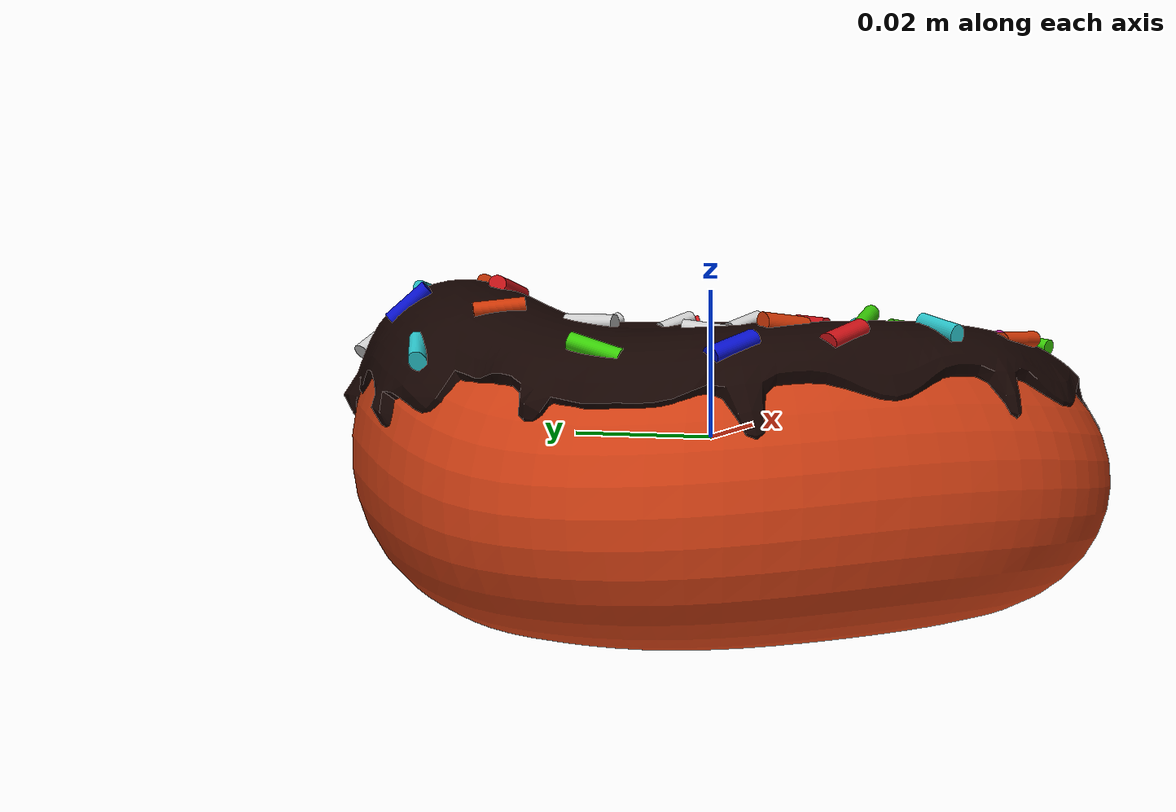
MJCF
<mujoco model="donut_11">
  <asset>
    <mesh file="visual/model_normalized_0.obj" name="model_normalized_0_vis" scale="0.10499999999999997 0.10499999999999997 0.10499999999999997" refquat="1.0 0.0 0.0 0.0"/>
    <mesh file="visual/model_normalized_1.obj" name="model_normalized_1_vis" scale="0.10499999999999997 0.10499999999999997 0.10499999999999997" refquat="1.0 0.0 0.0 0.0"/>
    <mesh file="visual/model_normalized_2.obj" name="model_normalized_2_vis" scale="0.10499999999999997 0.10499999999999997 0.10499999999999997" refquat="1.0 0.0 0.0 0.0"/>
    <mesh file="visual/model_normalized_3.obj" name="model_normalized_3_vis" scale="0.10499999999999997 0.10499999999999997 0.10499999999999997" refquat="1.0 0.0 0.0 0.0"/>
    <mesh file="visual/model_normalized_4.obj" name="model_normalized_4_vis" scale="0.10499999999999997 0.10499999999999997 0.10499999999999997" refquat="1.0 0.0 0.0 0.0"/>
    <mesh file="visual/model_normalized_5.obj" name="model_normalized_5_vis" scale="0.10499999999999997 0.10499999999999997 0.10499999999999997" refquat="1.0 0.0 0.0 0.0"/>
    <mesh file="visual/model_normalized_6.obj" name="model_normalized_6_vis" scale="0.10499999999999997 0.10499999999999997 0.10499999999999997" refquat="1.0 0.0 0.0 0.0"/>
    <mesh file="visual/model_normalized_7.obj" name="model_normalized_7_vis" scale="0.10499999999999997 0.10499999999999997 0.10499999999999997" refquat="1.0 0.0 0.0 0.0"/>
    <mesh file="visual/model_normalized_8.obj" name="model_normalized_8_vis" scale="0.10499999999999997 0.10499999999999997 0.10499999999999997" refquat="1.0 0.0 0.0 0.0"/>
    <mesh file="visual/model_normalized_9.obj" name="model_normalized_9_vis" scale="0.10499999999999997 0.10499999999999997 0.10499999999999997" refquat="1.0 0.0 0.0 0.0"/>
    <mesh file="collision/model_normalized_collision_22.obj" name="model_normalized_collision_22._coll" scale="0.10499999999999997 0.10499999999999997 0.10499999999999997" refquat="1.0 0.0 0.0 0.0"/>
    <mesh file="collision/model_normalized_collision_23.obj" name="model_normalized_collision_23._coll" scale="0.10499999999999997 0.10499999999999997 0.10499999999999997" refquat="1.0 0.0 0.0 0.0"/>
    <mesh file="collision/model_normalized_collision_21.obj" name="model_normalized_collision_21._coll" scale="0.10499999999999997 0.10499999999999997 0.10499999999999997" refquat="1.0 0.0 0.0 0.0"/>
    <mesh file="collision/model_normalized_collision_20.obj" name="model_normalized_collision_20._coll" scale="0.10499999999999997 0.10499999999999997 0.10499999999999997" refquat="1.0 0.0 0.0 0.0"/>
    <mesh file="collision/model_normalized_collision_24.obj" name="model_normalized_collision_24._coll" scale="0.10499999999999997 0.10499999999999997 0.10499999999999997" refquat="1.0 0.0 0.0 0.0"/>
    <mesh file="collision/model_normalized_collision_30.obj" name="model_normalized_collision_30._coll" scale="0.10499999999999997 0.10499999999999997 0.10499999999999997" refquat="1.0 0.0 0.0 0.0"/>
    <mesh file="collision/model_normalized_collision_18.obj" name="model_normalized_collision_18._coll" scale="0.10499999999999997 0.10499999999999997 0.10499999999999997" refquat="1.0 0.0 0.0 0.0"/>
    <mesh file="collision/model_normalized_collision_19.obj" name="model_normalized_collision_19._coll" scale="0.10499999999999997 0.10499999999999997 0.10499999999999997" refquat="1.0 0.0 0.0 0.0"/>
    <mesh file="collision/model_normalized_collision_31.obj" name="model_normalized_collision_31._coll" scale="0.10499999999999997 0.10499999999999997 0.10499999999999997" refquat="1.0 0.0 0.0 0.0"/>
    <mesh file="collision/model_normalized_collision_25.obj" name="model_normalized_collision_25._coll" scale="0.10499999999999997 0.10499999999999997 0.10499999999999997" refquat="1.0 0.0 0.0 0.0"/>
    <mesh file="collision/model_normalized_collision_27.obj" name="model_normalized_collision_27._coll" scale="0.10499999999999997 0.10499999999999997 0.10499999999999997" refquat="1.0 0.0 0.0 0.0"/>
    <mesh file="collision/model_normalized_collision_26.obj" name="model_normalized_collision_26._coll" scale="0.10499999999999997 0.10499999999999997 0.10499999999999997" refquat="1.0 0.0 0.0 0.0"/>
    <mesh file="collision/model_normalized_collision_9.obj" name="model_normalized_collision_9._coll" scale="0.10499999999999997 0.10499999999999997 0.10499999999999997" refquat="1.0 0.0 0.0 0.0"/>
    <mesh file="collision/model_normalized_collision_8.obj" name="model_normalized_collision_8._coll" scale="0.10499999999999997 0.10499999999999997 0.10499999999999997" refquat="1.0 0.0 0.0 0.0"/>
    <mesh file="collision/model_normalized_collision_6.obj" name="model_normalized_collision_6._coll" scale="0.10499999999999997 0.10499999999999997 0.10499999999999997" refquat="1.0 0.0 0.0 0.0"/>
    <mesh file="collision/model_normalized_collision_7.obj" name="model_normalized_collision_7._coll" scale="0.10499999999999997 0.10499999999999997 0.10499999999999997" refquat="1.0 0.0 0.0 0.0"/>
    <mesh file="collision/model_normalized_collision_5.obj" name="model_normalized_collision_5._coll" scale="0.10499999999999997 0.10499999999999997 0.10499999999999997" refquat="1.0 0.0 0.0 0.0"/>
    <mesh file="collision/model_normalized_collision_4.obj" name="model_normalized_collision_4._coll" scale="0.10499999999999997 0.10499999999999997 0.10499999999999997" refquat="1.0 0.0 0.0 0.0"/>
    <mesh file="collision/model_normalized_collision_0.obj" name="model_normalized_collision_0._coll" scale="0.10499999999999997 0.10499999999999997 0.10499999999999997" refquat="1.0 0.0 0.0 0.0"/>
    <mesh file="collision/model_normalized_collision_1.obj" name="model_normalized_collision_1._coll" scale="0.10499999999999997 0.10499999999999997 0.10499999999999997" refquat="1.0 0.0 0.0 0.0"/>
    <mesh file="collision/model_normalized_collision_3.obj" name="model_normalized_collision_3._coll" scale="0.10499999999999997 0.10499999999999997 0.10499999999999997" refquat="1.0 0.0 0.0 0.0"/>
    <mesh file="collision/model_normalized_collision_2.obj" name="model_normalized_collision_2._coll" scale="0.10499999999999997 0.10499999999999997 0.10499999999999997" refquat="1.0 0.0 0.0 0.0"/>
    <mesh file="collision/model_normalized_collision_17.obj" name="model_normalized_collision_17._coll" scale="0.10499999999999997 0.10499999999999997 0.10499999999999997" refquat="1.0 0.0 0.0 0.0"/>
    <mesh file="collision/model_normalized_collision_16.obj" name="model_normalized_collision_16._coll" scale="0.10499999999999997 0.10499999999999997 0.10499999999999997" refquat="1.0 0.0 0.0 0.0"/>
    <mesh file="collision/model_normalized_collision_28.obj" name="model_normalized_collision_28._coll" scale="0.10499999999999997 0.10499999999999997 0.10499999999999997" refquat="1.0 0.0 0.0 0.0"/>
    <mesh file="collision/model_normalized_collision_14.obj" name="model_normalized_collision_14._coll" scale="0.10499999999999997 0.10499999999999997 0.10499999999999997" refquat="1.0 0.0 0.0 0.0"/>
    <mesh file="collision/model_normalized_collision_15.obj" name="model_normalized_collision_15._coll" scale="0.10499999999999997 0.10499999999999997 0.10499999999999997" refquat="1.0 0.0 0.0 0.0"/>
    <mesh file="collision/model_normalized_collision_29.obj" name="model_normalized_collision_29._coll" scale="0.10499999999999997 0.10499999999999997 0.10499999999999997" refquat="1.0 0.0 0.0 0.0"/>
    <mesh file="collision/model_normalized_collision_11.obj" name="model_normalized_collision_11._coll" scale="0.10499999999999997 0.10499999999999997 0.10499999999999997" refquat="1.0 0.0 0.0 0.0"/>
    <mesh file="collision/model_normalized_collision_10.obj" name="model_normalized_collision_10._coll" scale="0.10499999999999997 0.10499999999999997 0.10499999999999997" refquat="1.0 0.0 0.0 0.0"/>
    <mesh file="collision/model_normalized_collision_12.obj" name="model_normalized_collision_12._coll" scale="0.10499999999999997 0.10499999999999997 0.10499999999999997" refquat="1.0 0.0 0.0 0.0"/>
    <mesh file="collision/model_normalized_collision_13.obj" name="model_normalized_collision_13._coll" scale="0.10499999999999997 0.10499999999999997 0.10499999999999997" refquat="1.0 0.0 0.0 0.0"/>
    <material name="Material.030" specular="0.5" shininess="0.25" rgba="0.076580 0.010038 0.000000 1.0"/>
    <material name="Material.031" specular="0.5" shininess="0.25" rgba="0.800000 0.073747 0.092156 1.0"/>
    <material name="Material.032" specular="0.5" shininess="0.25" rgba="0.800000 0.800000 0.800000 1.0"/>
    <material name="Material.033" specular="0.5" shininess="0.25" rgba="0.800000 0.213830 0.026317 1.0"/>
    <material name="Material.034" specular="0.5" shininess="0.25" rgba="0.222194 0.800000 0.027312 1.0"/>
    <material name="Material.035" specular="0.5" shininess="0.25" rgba="0.800000 0.120380 0.660224 1.0"/>
    <material name="Material.036" specular="0.5" shininess="0.25" rgba="0.168194 0.777143 0.800000 1.0"/>
    <material name="Material.037" specular="0.5" shininess="0.25" rgba="0.800000 0.800000 0.800000 1.0"/>
    <material name="Material.038" specular="0.5" shininess="0.25" rgba="0.035599 0.069545 0.800000 1.0"/>
    <material name="material.004" specular="0.5" shininess="0.25" rgba="0.800000 0.242728 0.075687 1.0"/>
  </asset>
  <worldbody>
    <body>
      <body name="object">
        <geom solimp="0.998 0.998 0.001" solref="0.001 1" density="100" friction="0.95 0.3 0.1" type="mesh" mesh="model_normalized_0_vis" conaffinity="0" contype="0" group="1" material="Material.038"/>
        <geom solimp="0.998 0.998 0.001" solref="0.001 1" density="100" friction="0.95 0.3 0.1" type="mesh" mesh="model_normalized_1_vis" conaffinity="0" contype="0" group="1" material="Material.037"/>
        <geom solimp="0.998 0.998 0.001" solref="0.001 1" density="100" friction="0.95 0.3 0.1" type="mesh" mesh="model_normalized_2_vis" conaffinity="0" contype="0" group="1" material="Material.036"/>
        <geom solimp="0.998 0.998 0.001" solref="0.001 1" density="100" friction="0.95 0.3 0.1" type="mesh" mesh="model_normalized_3_vis" conaffinity="0" contype="0" group="1" material="Material.035"/>
        <geom solimp="0.998 0.998 0.001" solref="0.001 1" density="100" friction="0.95 0.3 0.1" type="mesh" mesh="model_normalized_4_vis" conaffinity="0" contype="0" group="1" material="Material.034"/>
        <geom solimp="0.998 0.998 0.001" solref="0.001 1" density="100" friction="0.95 0.3 0.1" type="mesh" mesh="model_normalized_5_vis" conaffinity="0" contype="0" group="1" material="Material.033"/>
        <geom solimp="0.998 0.998 0.001" solref="0.001 1" density="100" friction="0.95 0.3 0.1" type="mesh" mesh="model_normalized_6_vis" conaffinity="0" contype="0" group="1" material="Material.032"/>
        <geom solimp="0.998 0.998 0.001" solref="0.001 1" density="100" friction="0.95 0.3 0.1" type="mesh" mesh="model_normalized_7_vis" conaffinity="0" contype="0" group="1" material="Material.031"/>
        <geom solimp="0.998 0.998 0.001" solref="0.001 1" density="100" friction="0.95 0.3 0.1" type="mesh" mesh="model_normalized_8_vis" conaffinity="0" contype="0" group="1" material="Material.030"/>
        <geom solimp="0.998 0.998 0.001" solref="0.001 1" density="100" friction="0.95 0.3 0.1" type="mesh" mesh="model_normalized_9_vis" conaffinity="0" contype="0" group="1" material="material.004"/>
        <geom solimp="0.998 0.998 0.001" solref="0.001 1" density="100" friction="0.95 0.3 0.1" type="mesh" mesh="model_normalized_collision_22._coll" group="0" rgba="0.8 0.8 0.8 0.0"/>
        <geom solimp="0.998 0.998 0.001" solref="0.001 1" density="100" friction="0.95 0.3 0.1" type="mesh" mesh="model_normalized_collision_23._coll" group="0" rgba="0.8 0.8 0.8 0.0"/>
        <geom solimp="0.998 0.998 0.001" solref="0.001 1" density="100" friction="0.95 0.3 0.1" type="mesh" mesh="model_normalized_collision_21._coll" group="0" rgba="0.8 0.8 0.8 0.0"/>
        <geom solimp="0.998 0.998 0.001" solref="0.001 1" density="100" friction="0.95 0.3 0.1" type="mesh" mesh="model_normalized_collision_20._coll" group="0" rgba="0.8 0.8 0.8 0.0"/>
        <geom solimp="0.998 0.998 0.001" solref="0.001 1" density="100" friction="0.95 0.3 0.1" type="mesh" mesh="model_normalized_collision_24._coll" group="0" rgba="0.8 0.8 0.8 0.0"/>
        <geom solimp="0.998 0.998 0.001" solref="0.001 1" density="100" friction="0.95 0.3 0.1" type="mesh" mesh="model_normalized_collision_30._coll" group="0" rgba="0.8 0.8 0.8 0.0"/>
        <geom solimp="0.998 0.998 0.001" solref="0.001 1" density="100" friction="0.95 0.3 0.1" type="mesh" mesh="model_normalized_collision_18._coll" group="0" rgba="0.8 0.8 0.8 0.0"/>
        <geom solimp="0.998 0.998 0.001" solref="0.001 1" density="100" friction="0.95 0.3 0.1" type="mesh" mesh="model_normalized_collision_19._coll" group="0" rgba="0.8 0.8 0.8 0.0"/>
        <geom solimp="0.998 0.998 0.001" solref="0.001 1" density="100" friction="0.95 0.3 0.1" type="mesh" mesh="model_normalized_collision_31._coll" group="0" rgba="0.8 0.8 0.8 0.0"/>
        <geom solimp="0.998 0.998 0.001" solref="0.001 1" density="100" friction="0.95 0.3 0.1" type="mesh" mesh="model_normalized_collision_25._coll" group="0" rgba="0.8 0.8 0.8 0.0"/>
        <geom solimp="0.998 0.998 0.001" solref="0.001 1" density="100" friction="0.95 0.3 0.1" type="mesh" mesh="model_normalized_collision_27._coll" group="0" rgba="0.8 0.8 0.8 0.0"/>
        <geom solimp="0.998 0.998 0.001" solref="0.001 1" density="100" friction="0.95 0.3 0.1" type="mesh" mesh="model_normalized_collision_26._coll" group="0" rgba="0.8 0.8 0.8 0.0"/>
        <geom solimp="0.998 0.998 0.001" solref="0.001 1" density="100" friction="0.95 0.3 0.1" type="mesh" mesh="model_normalized_collision_9._coll" group="0" rgba="0.8 0.8 0.8 0.0"/>
        <geom solimp="0.998 0.998 0.001" solref="0.001 1" density="100" friction="0.95 0.3 0.1" type="mesh" mesh="model_normalized_collision_8._coll" group="0" rgba="0.8 0.8 0.8 0.0"/>
        <geom solimp="0.998 0.998 0.001" solref="0.001 1" density="100" friction="0.95 0.3 0.1" type="mesh" mesh="model_normalized_collision_6._coll" group="0" rgba="0.8 0.8 0.8 0.0"/>
        <geom solimp="0.998 0.998 0.001" solref="0.001 1" density="100" friction="0.95 0.3 0.1" type="mesh" mesh="model_normalized_collision_7._coll" group="0" rgba="0.8 0.8 0.8 0.0"/>
        <geom solimp="0.998 0.998 0.001" solref="0.001 1" density="100" friction="0.95 0.3 0.1" type="mesh" mesh="model_normalized_collision_5._coll" group="0" rgba="0.8 0.8 0.8 0.0"/>
        <geom solimp="0.998 0.998 0.001" solref="0.001 1" density="100" friction="0.95 0.3 0.1" type="mesh" mesh="model_normalized_collision_4._coll" group="0" rgba="0.8 0.8 0.8 0.0"/>
        <geom solimp="0.998 0.998 0.001" solref="0.001 1" density="100" friction="0.95 0.3 0.1" type="mesh" mesh="model_normalized_collision_0._coll" group="0" rgba="0.8 0.8 0.8 0.0"/>
        <geom solimp="0.998 0.998 0.001" solref="0.001 1" density="100" friction="0.95 0.3 0.1" type="mesh" mesh="model_normalized_collision_1._coll" group="0" rgba="0.8 0.8 0.8 0.0"/>
        <geom solimp="0.998 0.998 0.001" solref="0.001 1" density="100" friction="0.95 0.3 0.1" type="mesh" mesh="model_normalized_collision_3._coll" group="0" rgba="0.8 0.8 0.8 0.0"/>
        <geom solimp="0.998 0.998 0.001" solref="0.001 1" density="100" friction="0.95 0.3 0.1" type="mesh" mesh="model_normalized_collision_2._coll" group="0" rgba="0.8 0.8 0.8 0.0"/>
        <geom solimp="0.998 0.998 0.001" solref="0.001 1" density="100" friction="0.95 0.3 0.1" type="mesh" mesh="model_normalized_collision_17._coll" group="0" rgba="0.8 0.8 0.8 0.0"/>
        <geom solimp="0.998 0.998 0.001" solref="0.001 1" density="100" friction="0.95 0.3 0.1" type="mesh" mesh="model_normalized_collision_16._coll" group="0" rgba="0.8 0.8 0.8 0.0"/>
        <geom solimp="0.998 0.998 0.001" solref="0.001 1" density="100" friction="0.95 0.3 0.1" type="mesh" mesh="model_normalized_collision_28._coll" group="0" rgba="0.8 0.8 0.8 0.0"/>
        <geom solimp="0.998 0.998 0.001" solref="0.001 1" density="100" friction="0.95 0.3 0.1" type="mesh" mesh="model_normalized_collision_14._coll" group="0" rgba="0.8 0.8 0.8 0.0"/>
        <geom solimp="0.998 0.998 0.001" solref="0.001 1" density="100" friction="0.95 0.3 0.1" type="mesh" mesh="model_normalized_collision_15._coll" group="0" rgba="0.8 0.8 0.8 0.0"/>
        <geom solimp="0.998 0.998 0.001" solref="0.001 1" density="100" friction="0.95 0.3 0.1" type="mesh" mesh="model_normalized_collision_29._coll" group="0" rgba="0.8 0.8 0.8 0.0"/>
        <geom solimp="0.998 0.998 0.001" solref="0.001 1" density="100" friction="0.95 0.3 0.1" type="mesh" mesh="model_normalized_collision_11._coll" group="0" rgba="0.8 0.8 0.8 0.0"/>
        <geom solimp="0.998 0.998 0.001" solref="0.001 1" density="100" friction="0.95 0.3 0.1" type="mesh" mesh="model_normalized_collision_10._coll" group="0" rgba="0.8 0.8 0.8 0.0"/>
        <geom solimp="0.998 0.998 0.001" solref="0.001 1" density="100" friction="0.95 0.3 0.1" type="mesh" mesh="model_normalized_collision_12._coll" group="0" rgba="0.8 0.8 0.8 0.0"/>
        <geom solimp="0.998 0.998 0.001" solref="0.001 1" density="100" friction="0.95 0.3 0.1" type="mesh" mesh="model_normalized_collision_13._coll" group="0" rgba="0.8 0.8 0.8 0.0"/>
      </body>
      <site rgba="0 0 0 0" size="0.005" pos="0.00045828090000000056 1.130797499999905e-05 -0.022075215749999988" name="bottom_site"/>
      <site rgba="0 0 0 0" size="0.005" pos="0.00045828090000000056 1.130797499999905e-05 0.021962774399999996" name="top_site"/>
      <site rgba="0 0 0 0" size="0.005" pos="0.04803898889999998 0.051502557749999976 -5.6220674999998604e-05" name="horizontal_radius_site"/>
    </body>
  </worldbody>
</mujoco>
